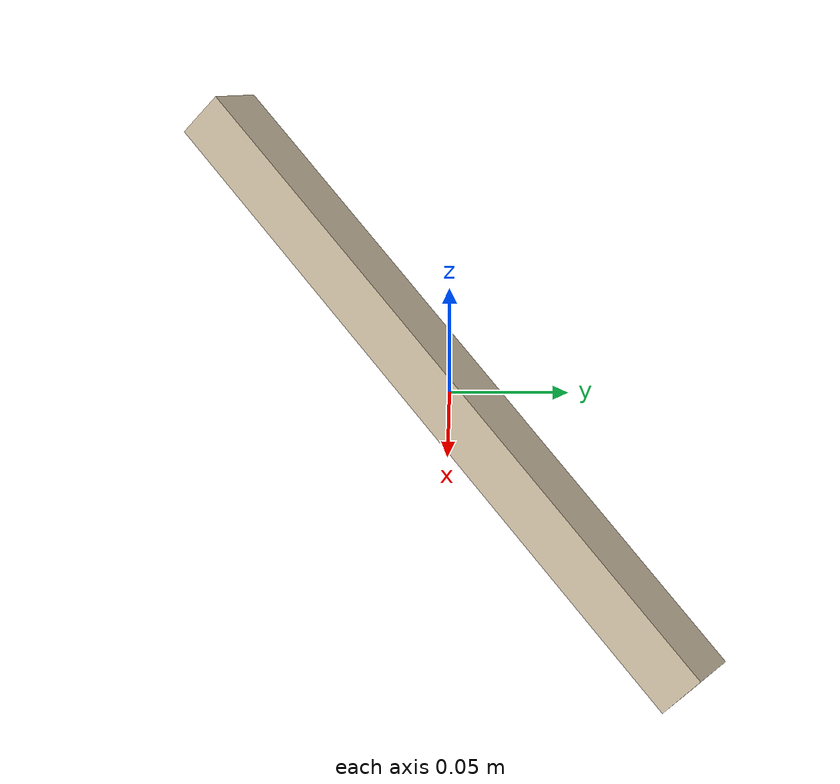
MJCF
<mujoco model="target">
  <compiler meshdir="assets" texturedir="assets" autolimits="true"/>
  <default>
    <default class="visual">
      <geom group="2" type="mesh" contype="0" conaffinity="0"/>
    </default>
    <default class="collision">
      <geom group="3" type="mesh"/>
    </default>
  </default>
  <asset>
    <!-- material name="215,199,171" specular="1.0" shininess="1.0" rgba="0.843137 0.780392 0.670588 1.000000"/-->
    <material name="215,199,171" specular="0.25" shininess="0.25" rgba="0.843137 0.780392 0.670588 1.000000"/>
    <mesh file="object.obj"/>
  </asset>
  <worldbody>
    <body name="object">
      <geom material="215,199,171" mesh="object" class="visual"/>
      <geom mesh="object" class="collision"/>
    </body>
  </worldbody>
</mujoco>
